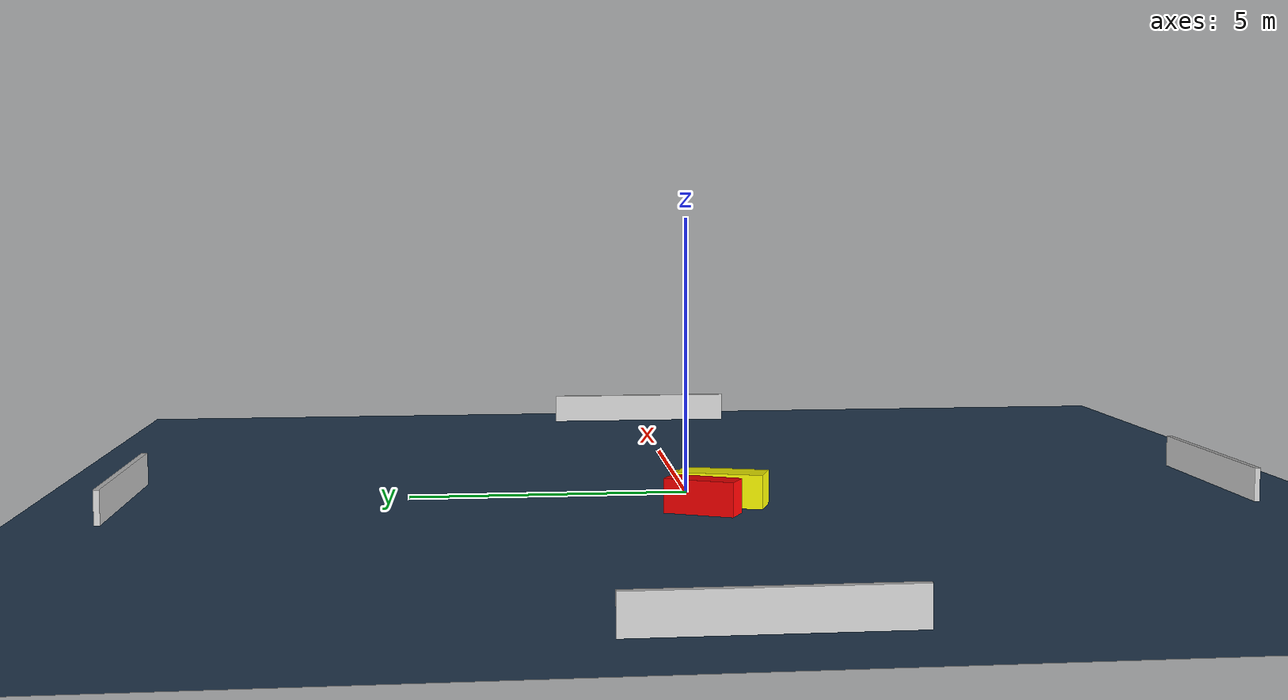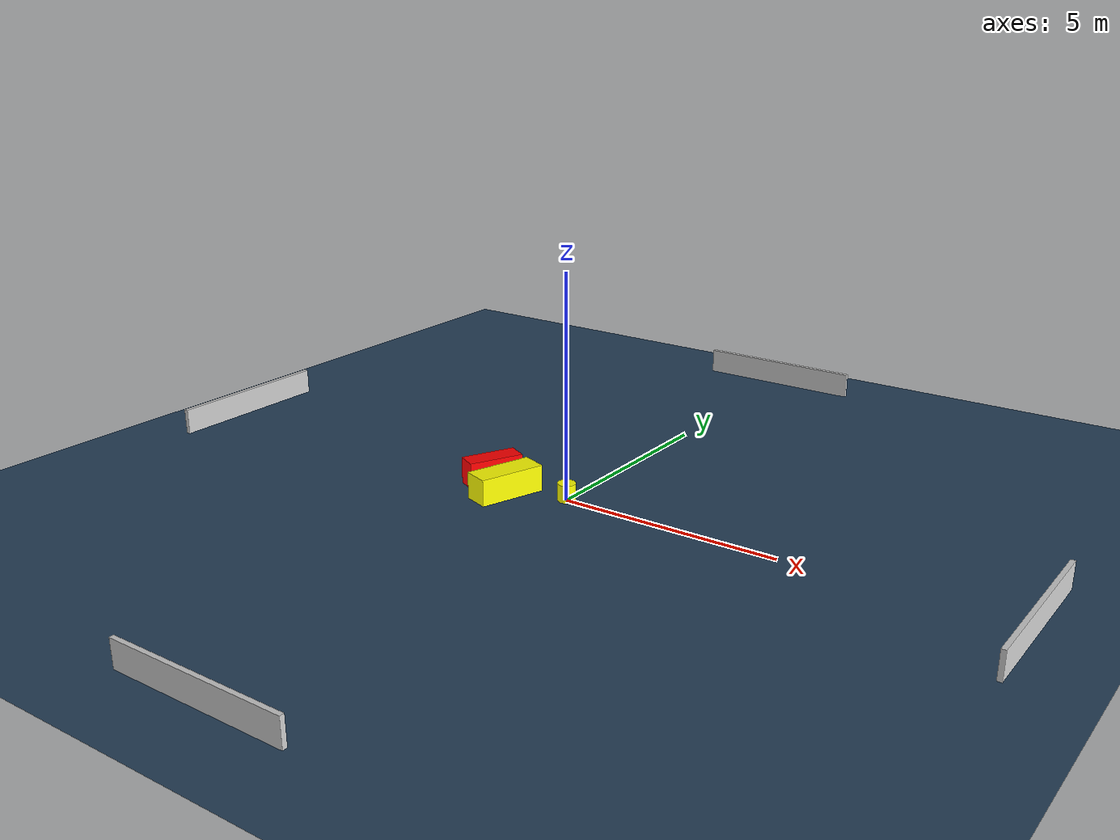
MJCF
<?xml version="1.0" ?>
<mujoco model="generated_environment">
  <option timestep="0.01" integrator="RK4" cone="elliptic"/>
  <default>
    <geom density="1"/>
  </default>
  <asset>
    <texture builtin="gradient" height="3072" name="skybox" rgb1="0.3 0.5 0.7" rgb2="0 0 0" type="skybox" width="512"/>
    <texture builtin="checker" height="300" name="groundplane" rgb1="0.2 0.3 0.4" rgb2="0.1 0.2 0.3" type="2d" width="300"/>
    <material name="groundplane" reflectance="0.2" texrepeat="5 5" texture="groundplane"/>
  </asset>
  <worldbody>
    <light dir="0 0 -1" directional="true" pos="0 0 1.5"/>
    <geom condim="3" friction="0.5 0.005 0.001" material="groundplane" name="floor" pos="0 0 0" size="0 0 0.05" type="plane"/>
    <body name="walls">
      <geom name="wall_1" condim="4" pos="-10.0 0.0 0.3" rgba="0.800000011920929 0.800000011920929 0.800000011920929 1.0" size="0.05 2.0 0.3" type="box"/>
      <geom name="wall_2" condim="4" pos="10.0 0.0 0.3" rgba="0.800000011920929 0.800000011920929 0.800000011920929 1.0" size="0.05 2.0 0.3" type="box"/>
      <geom name="wall_3" condim="4" pos="0.0 -10.0 0.3" rgba="0.800000011920929 0.800000011920929 0.800000011920929 1.0" size="2.0 0.05 0.3" type="box"/>
      <geom name="wall_4" condim="4" pos="0.0 10.0 0.3" rgba="0.800000011920929 0.800000011920929 0.800000011920929 1.0" size="2.0 0.05 0.3" type="box"/>
    </body>
    <body name="robot">
      <joint name="joint_x" type="slide" pos="0 0 0" axis="1 0 0"/>
      <joint name="joint_y" type="slide" pos="0 0 0" axis="0 1 0"/>
      <geom name="robot" type="cylinder" pos="0.0 0.0 0.2" size="0.2 0.2 0.0" mass="5.0" friction="1.0 0.005 0.0001" condim="4" rgba="1.0 1.0 0.0 1.0"/>
    </body>
    <body name="obstacle_1_movable">
      <geom name="obstacle_1_movable" condim="4" pos="-1.2753112030884919 -0.5064342958002126 0.3" euler="0 0 341.19634568917206" friction="0.0 0.005 0.001" rgba="1.0 1.0 0.0 1.0" size="0.2994154038661586 0.7672564584270334 0.3" type="box" mass="0.1"/>
      <joint type="free"/>
    </body>
    <body name="obstacle_2_static">
      <geom name="obstacle_2_static" condim="4" pos="-1.987717447963315 -0.06727064587543198 0.3" euler="0 0 243.57546491090648" friction="0.0 0.005 0.001" rgba="1.0 0.0 0.0 1.0" size="0.6298454834761523 0.2354569847021932 0.3" type="box"/>
    </body>
  </worldbody>
  <actuator>
    <motor name="actuator_x" joint="joint_x" gear="1" ctrlrange="-1 1"/>
    <motor name="actuator_y" joint="joint_y" gear="1" ctrlrange="-1 1"/>
  </actuator>
</mujoco>
